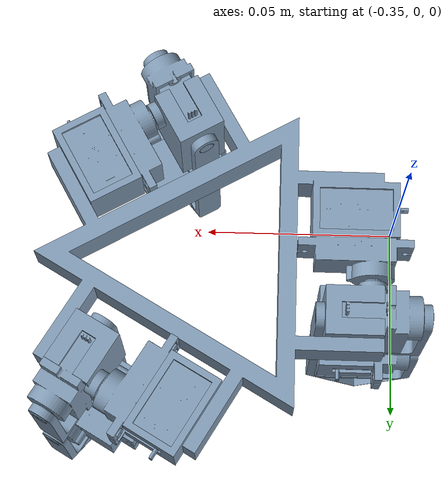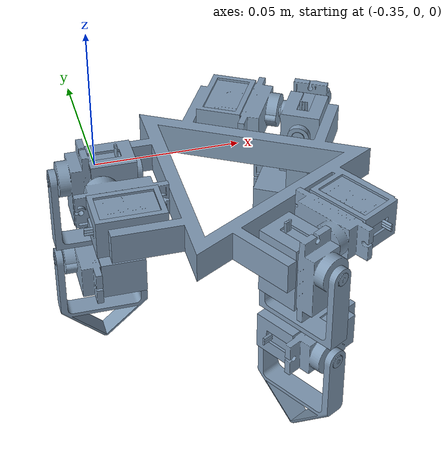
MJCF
<mujoco model="Triped">
  <compiler angle="radian" meshdir="../meshes/" autolimits="true"/>
  <statistic meansize="0.0627647" extent="0.390788" center="-0.195394 -0.00267196 -0.0184402"/>

  <option gravity='0 0 -9.806' iterations='50' solver='Newton' timestep='0.002'/>

  <default>
    <geom contype="1" conaffinity="1" friction="0.6 0.3 0.3" rgba="0.5 0.6 0.7 1" margin="0.001" group="0"/>
    <light castshadow="false" diffuse="1 1 1"/>
    <camera fovy="60"/>
    <joint damping="0.01" armature="0.01" frictionloss="0.2"/>
  </default>

  <asset>
    <texture type="skybox" builtin="gradient" rgb1="1.0 1.0 1.0" rgb2="1.0 1.0 1.0" width="512" height="512"/>
    <texture name="plane" type="2d" builtin="flat" rgb1="1 1 1" rgb2="1 1 1" width="512" height="512" mark="cross" markrgb="0 0 0"/>
    <material name="plane" reflectance="0.0" texture="plane" texrepeat="3 3" texuniform="true"/>
  </asset>

  <asset>
    <mesh name="base_link" file="base_link.stl" scale="0.001 0.001 0.001"/>
    <mesh name="servo_7_1" file="servo_7_1.stl" scale="0.001 0.001 0.001"/>
    <mesh name="servo_8_1" file="servo_8_1.stl" scale="0.001 0.001 0.001"/>
    <mesh name="servo_9_1" file="servo_9_1.stl" scale="0.001 0.001 0.001"/>
    <mesh name="servo_6_1" file="servo_6_1.stl" scale="0.001 0.001 0.001"/>
    <mesh name="servo_5_1" file="servo_5_1.stl" scale="0.001 0.001 0.001"/>
    <mesh name="servo_4_1" file="servo_4_1.stl" scale="0.001 0.001 0.001"/>
    <mesh name="servo_3_1" file="servo_3_1.stl" scale="0.001 0.001 0.001"/>
    <mesh name="servo_2_1" file="servo_2_1.stl" scale="0.001 0.001 0.001"/>
    <mesh name="servo_1_1" file="servo_1_1.stl" scale="0.001 0.001 0.001"/>
    <mesh name="holder_3_1" file="holder_3_1.stl" scale="0.001 0.001 0.001"/>
    <mesh name="holder_2_1" file="holder_2_1.stl" scale="0.001 0.001 0.001"/>
    <mesh name="holder_1_1" file="holder_1_1.stl" scale="0.001 0.001 0.001"/>
    <mesh name="leg_3_1" file="leg_3_1.stl" scale="0.001 0.001 0.001"/>
    <mesh name="leg_2_1" file="leg_2_1.stl" scale="0.001 0.001 0.001"/>
    <mesh name="leg_1_1" file="leg_1_1.stl" scale="0.001 0.001 0.001"/>
    <mesh name="foot_3_1" file="foot_3_1.stl" scale="0.001 0.001 0.001"/>
    <mesh name="foot_1_1" file="foot_1_1.stl" scale="0.001 0.001 0.001"/>
    <mesh name="foot_2_1" file="foot_2_1.stl" scale="0.001 0.001 0.001"/>
  </asset>
  <worldbody>
    <light directional="true" diffuse=".8 .8 .8" pos="0 0 10" dir="0 0 -10"/>
    <camera name="track" mode="trackcom" pos="0 -1.3 1.6" xyaxes="1 0 0 0 0.707 0.707"/>
    <geom name='floor' type='plane' conaffinity='1' condim='3' contype='1' rgba="0.5 0.9 0.9 0.1" material='plane' pos='0 0 0' size='0 0 1'/>

    <body name="base_link">
      <inertial pos="-0.3 0.00281922 -0.0175852" quat="0.500043 0.499957 -0.500043 0.499957" mass="0.346208" diaginertia="0.000592462 0.000300897 0.000299898"/>
      <joint name="floating_base" type="free"/>
      <geom type="mesh" contype="0" conaffinity="0" group="1" density="0" mesh="base_link"/>
      <geom type="mesh" mesh="base_link"/>
      <geom type="mesh" contype="0" conaffinity="0" group="1" density="0" mesh="servo_1_1"/>
      <geom type="mesh" mesh="servo_1_1"/>
      <geom type="mesh" contype="0" conaffinity="0" group="1" density="0" mesh="servo_2_1"/>
      <geom type="mesh" mesh="servo_2_1"/>
      <geom type="mesh" contype="0" conaffinity="0" group="1" density="0" mesh="servo_3_1"/>
      <geom type="mesh" mesh="servo_3_1"/>
      <body name="holder_1_1" pos="-0.346899 0.028191 -0.016881">
        <inertial pos="0.00143907 -0.00969893 -0.00466082" quat="0.4976 0.504908 0.502539 0.49489" mass="0.0695228" diaginertia="7.42966e-06 5.42953e-06 4.00136e-06"/>
        <joint name="revolute_holder_10" pos="0 0 0" axis="-0.003977 -0.999992 0"/>
        <geom pos="0.346899 -0.028191 0.016881" type="mesh" contype="0" conaffinity="0" group="1" density="0" mesh="holder_1_1"/>
        <geom pos="0.346899 -0.028191 0.016881" type="mesh" mesh="holder_1_1"/>
        <geom pos="0.346899 -0.028191 0.016881" type="mesh" contype="0" conaffinity="0" group="1" density="0" mesh="servo_4_1"/>
        <geom pos="0.346899 -0.028191 0.016881" type="mesh" mesh="servo_4_1"/>
        <body name="leg_1_1" pos="0.016211 -0.009715 0">
          <inertial pos="-0.015247 -0.00370808 -0.0323588" quat="0.525308 -0.406794 -0.0801766 0.743063" mass="0.0812466" diaginertia="1.24622e-05 9.84419e-06 9.11215e-06"/>
          <joint name="revolulte_leg_13" pos="0 0 0" axis="0.999992 -0.003977 0"/>
          <geom pos="0.330688 -0.018476 0.016881" type="mesh" contype="0" conaffinity="0" group="1" density="0" mesh="leg_1_1"/>
          <geom pos="0.330688 -0.018476 0.016881" type="mesh" mesh="leg_1_1"/>
          <geom pos="0.330688 -0.018476 0.016881" type="mesh" contype="0" conaffinity="0" group="1" density="0" mesh="servo_7_1"/>
          <geom pos="0.330688 -0.018476 0.016881" type="mesh" mesh="servo_7_1"/>
          <body name="foot_1_1" pos="-0.000249 0.000261 -0.03515">
            <inertial pos="-0.0164912 6.59499e-05 -0.0188594" quat="0.707107 0 0 0.707107" mass="0.0140032" diaginertia="4e-06 2e-06 2e-06"/>
            <joint name="revolute_foot_16" pos="0 0 0" axis="0.999992 -0.003977 0"/>
            <geom pos="0.330937 -0.018737 0.052031" type="mesh" contype="0" conaffinity="0" group="1" density="0" mesh="foot_1_1"/>
            <geom pos="0.330937 -0.018737 0.052031" type="mesh" mesh="foot_1_1"/>
          </body>
        </body>
      </body>
      <body name="holder_2_1" pos="-0.298523 -0.050483 -0.016881">
        <inertial pos="0.00767988 0.00609634 -0.00466082" quat="0.688123 0.674363 0.187157 0.191556" mass="0.0695228" diaginertia="7.04652e-06 5.42965e-06 4.38439e-06"/>
        <joint name="revolute_holder_11" pos="0 0 0" axis="0.868007 0.496552 0"/>
        <geom pos="0.298523 0.050483 0.016881" type="mesh" contype="0" conaffinity="0" group="1" density="0" mesh="holder_2_1"/>
        <geom pos="0.298523 0.050483 0.016881" type="mesh" mesh="holder_2_1"/>
        <geom pos="0.298523 0.050483 0.016881" type="mesh" contype="0" conaffinity="0" group="1" density="0" mesh="servo_5_1"/>
        <geom pos="0.298523 0.050483 0.016881" type="mesh" mesh="servo_5_1"/>
        <body name="leg_2_1" pos="0.000307 0.018897 0">
          <inertial pos="0.0108356 -0.01135 -0.0323588" quat="0.773832 0.561796 -0.0153664 0.292118" mass="0.0812466" diaginertia="1.23258e-05 1.01201e-05 8.97261e-06"/>
          <joint name="revolulte_leg_14" pos="0 0 0" axis="-0.496552 0.868007 0"/>
          <geom pos="0.298216 0.031586 0.016881" type="mesh" contype="0" conaffinity="0" group="1" density="0" mesh="leg_2_1"/>
          <geom pos="0.298216 0.031586 0.016881" type="mesh" mesh="leg_2_1"/>
          <geom pos="0.298216 0.031586 0.016881" type="mesh" contype="0" conaffinity="0" group="1" density="0" mesh="servo_8_1"/>
          <geom pos="0.298216 0.031586 0.016881" type="mesh" mesh="servo_8_1"/>
          <body name="foot_2_1" pos="-0.000101 -0.000346 -0.03515">
            <inertial pos="0.00818879 -0.0143147 -0.0188594" quat="0.680193 0.680193 0.193229 0.193229" mass="0.0140032" diaginertia="2.33333e-06 2.33333e-06 2.33333e-06"/>
            <joint name="revolute_foot_17" pos="0 0 0" axis="-0.496552 0.868007 0"/>
            <geom pos="0.298317 0.031932 0.052031" type="mesh" contype="0" conaffinity="0" group="1" density="0" mesh="foot_2_1"/>
            <geom pos="0.298317 0.031932 0.052031" type="mesh" mesh="foot_2_1"/>
          </body>
        </body>
      </body>
      <body name="holder_3_1" pos="-0.254578 0.03075 -0.016881">
        <inertial pos="-0.00911895 0.00360225 -0.00466082" quat="0.673039 0.686945 -0.195739 -0.191862" mass="0.0695228" diaginertia="7.04827e-06 5.42965e-06 4.38263e-06"/>
        <joint name="revolute_holder_12" pos="0 0 0" axis="-0.86403 0.50344 0"/>
        <geom pos="0.254578 -0.03075 0.016881" type="mesh" contype="0" conaffinity="0" group="1" density="0" mesh="holder_3_1"/>
        <geom pos="0.254578 -0.03075 0.016881" type="mesh" mesh="holder_3_1"/>
        <geom pos="0.254578 -0.03075 0.016881" type="mesh" contype="0" conaffinity="0" group="1" density="0" mesh="servo_6_1"/>
        <geom pos="0.254578 -0.03075 0.016881" type="mesh" mesh="servo_6_1"/>
        <body name="leg_3_1" pos="-0.016519 -0.009183 0">
          <inertial pos="0.00441236 0.0150587 -0.0323588" quat="0.877067 -0.262135 0.345268 -0.206948" mass="0.0812466" diaginertia="1.22518e-05 9.77892e-06 9.38781e-06"/>
          <joint name="revolulte_leg_15" pos="0 0 0" axis="-0.50344 -0.86403 0"/>
          <geom pos="0.271097 -0.021567 0.016881" type="mesh" contype="0" conaffinity="0" group="1" density="0" mesh="leg_3_1"/>
          <geom pos="0.271097 -0.021567 0.016881" type="mesh" mesh="leg_3_1"/>
          <geom pos="0.271097 -0.021567 0.016881" type="mesh" contype="0" conaffinity="0" group="1" density="0" mesh="servo_9_1"/>
          <geom pos="0.271097 -0.021567 0.016881" type="mesh" mesh="servo_9_1"/>
          <body name="foot_3_1" pos="0.000351 8.5e-05 -0.03515">
            <inertial pos="0.00830242 0.0142494 -0.0188594" quat="0.680193 0.680193 -0.193229 -0.193229" mass="0.0140032" diaginertia="2.33333e-06 2.33333e-06 2.33333e-06"/>
            <joint name="revolute_foot_18" pos="0 0 0" axis="-0.50344 -0.86403 0"/>
            <geom pos="0.270746 -0.021652 0.052031" type="mesh" contype="0" conaffinity="0" group="1" density="0" mesh="foot_3_1"/>
            <geom pos="0.270746 -0.021652 0.052031" type="mesh" mesh="foot_3_1"/>
          </body>
        </body>
      </body>
    </body>
  </worldbody>
</mujoco>
